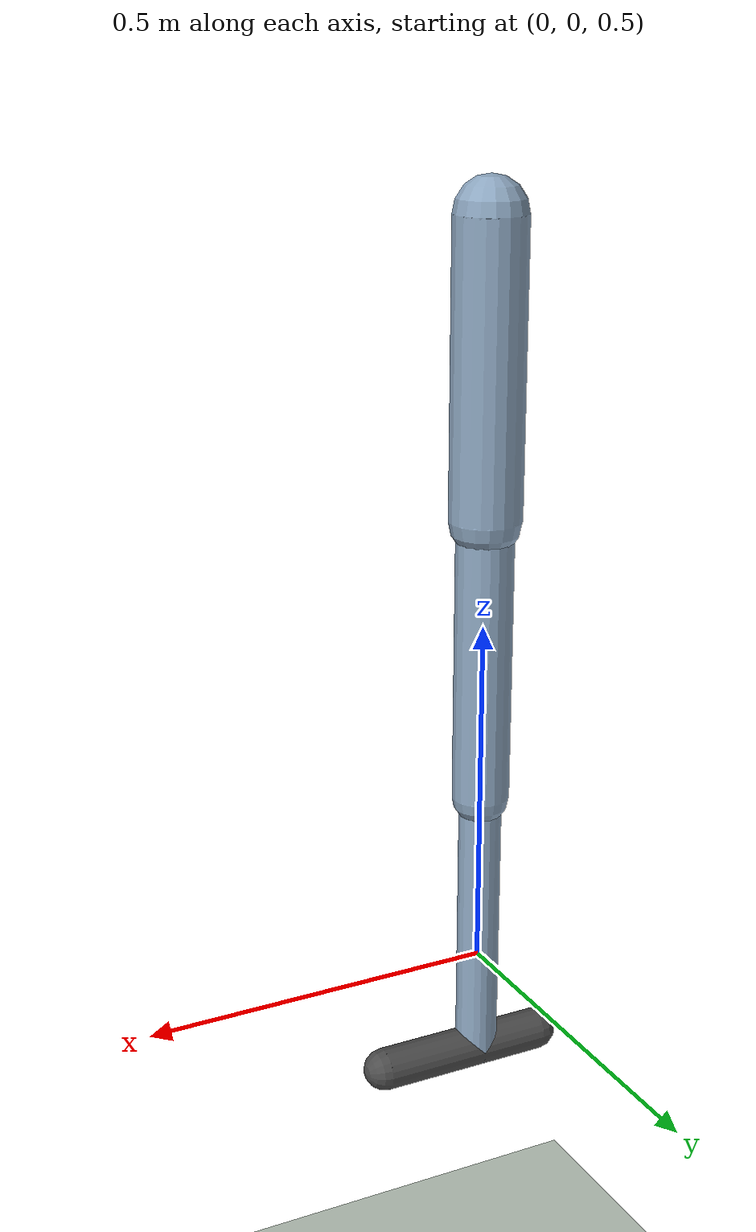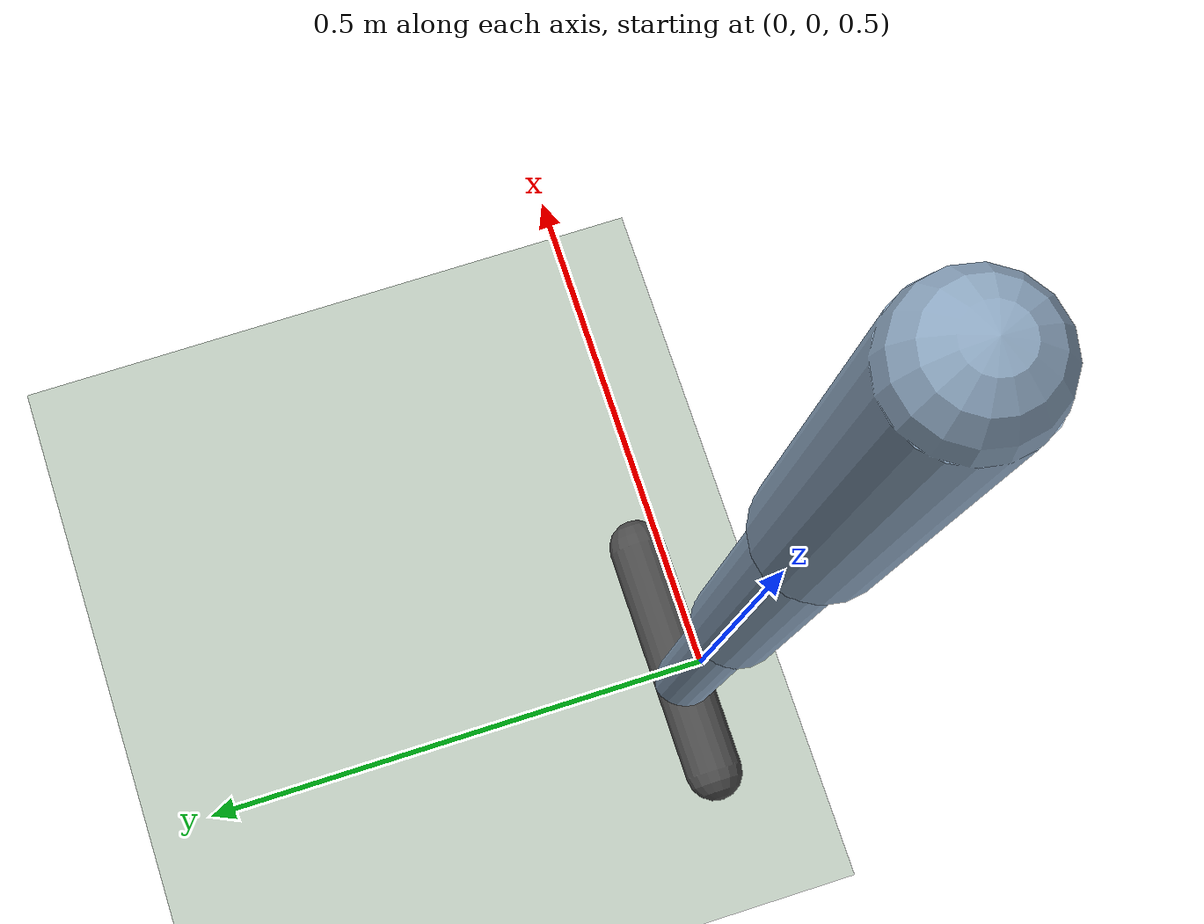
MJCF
<mujoco model="simple_biped">

  <!-- angle="degree" lets us write joint ranges in degrees.              -->
  <!-- MuJoCo stores and reports everything in radians at runtime.        -->
  <!-- autolimits means we don't need to write limited="true" everywhere. -->
  <compiler angle="degree" autolimits="true"/>

  <!-- timestep: how long each physics sub-step is (0.002 s = 500 Hz).   -->
  <!-- frame_skip in Python will call this 4 times per agent step → 8 ms  -->
  <option timestep="0.002" integrator="RK4"/>

  <!-- Shared defaults so we don't repeat them on every joint/geom. -->
  <default>
    <joint damping="0.1" armature="0.01"/>
    <!-- friction: [slide, spin, roll]. Higher slide = more grip. -->
    <geom friction="1.5 0.1 0.1" rgba="0.55 0.65 0.75 1" contype="1" conaffinity="1"/>
    <motor ctrlrange="-1 1" ctrllimited="true"/>
  </default>

  <worldbody>
    <light pos="0 0 4" dir="0 0 -1" diffuse="1 1 1" specular="0.1 0.1 0.1"/>
    <!-- The floor. The robot walks on this. -->
    <geom name="floor" type="plane" size="20 20 0.1" rgba="0.75 0.8 0.75 1"
          contype="1" conaffinity="1"/>

    <!--
      TORSO  (starts at z=1.25 so legs have room to fall to the ground)
      The robot drops ~0.35 m at episode start — MuJoCo handles this fine.
    -->
    <body name="torso" pos="0 0 1.25">

      <joint name="rootx" type="slide" axis="1 0 0"
             armature="0" damping="0" stiffness="0"/>
      <joint name="rootz" type="slide" axis="0 0 1"
             armature="0" damping="0" stiffness="0"/>
      <joint name="rooty" type="hinge" axis="0 1 0"
             armature="0" damping="0" stiffness="0"/>

      <!-- Torso capsule: 40 cm tall, 5 cm radius -->
      <geom name="torso_geom" type="capsule" fromto="0 0 -0.1 0 0 0.3" size="0.05"/>

      <!-- ── RIGHT LEG ──────────────────────────────────────────────── -->
      <!--
        Each leg body is positioned at the BOTTOM of the parent geom.
        pos="0 0 -0.1" means it attaches 10 cm below the torso centre.
      -->
      <body name="right_thigh" pos="0 0 -0.1">
        <!--
          Hip joint: swings the leg forward (positive) and backward (negative).
          Range -30 to 100 degrees allows a large forward swing for running.
        -->
        <joint name="right_hip" type="hinge" axis="0 1 0" range="-30 100" damping="0.5"/>
        <!-- Thigh: 40 cm long capsule pointing straight down -->
        <geom name="right_thigh_geom" type="capsule" fromto="0 0 0 0 0 -0.4" size="0.04"/>

        <body name="right_shin" pos="0 0 -0.4">
          <!--
            Knee joint: only bends one way (range -80 to 0).
            Knees can't hyperextend — this matches real anatomy.
          -->
          <joint name="right_knee" type="hinge" axis="0 1 0" range="-80 0" damping="0.3"/>
          <geom name="right_shin_geom" type="capsule" fromto="0 0 0 0 0 -0.4" size="0.03"/>

          <body name="right_foot" pos="0 0 -0.4">
            <!-- Ankle: plantarflexion and dorsiflexion -->
            <joint name="right_ankle" type="hinge" axis="0 1 0" range="-45 45" damping="0.2"/>
            <!--
              Foot: a HORIZONTAL capsule so there's a flat-ish surface for contact.
              fromto goes a bit forward (0.15) and a bit back (-0.1) of the ankle.
            -->
            <geom name="right_foot_geom" type="capsule" fromto="-0.1 0 0 0.15 0 0"
                  size="0.03" rgba="0.3 0.3 0.3 1"/>
          </body>
        </body>
      </body>

      <!-- ── LEFT LEG (mirror of right) ───────────────────────────── -->
      <body name="left_thigh" pos="0 0 -0.1">
        <joint name="left_hip" type="hinge" axis="0 1 0" range="-30 100" damping="0.5"/>
        <geom name="left_thigh_geom" type="capsule" fromto="0 0 0 0 0 -0.4" size="0.04"/>

        <body name="left_shin" pos="0 0 -0.4">
          <joint name="left_knee" type="hinge" axis="0 1 0" range="-80 0" damping="0.3"/>
          <geom name="left_shin_geom" type="capsule" fromto="0 0 0 0 0 -0.4" size="0.03"/>

          <body name="left_foot" pos="0 0 -0.4">
            <joint name="left_ankle" type="hinge" axis="0 1 0" range="-45 45" damping="0.2"/>
            <geom name="left_foot_geom" type="capsule" fromto="-0.1 0 0 0.15 0 0"
                  size="0.03" rgba="0.3 0.3 0.3 1"/>
          </body>
        </body>
      </body>

    </body>
  </worldbody>

  <actuator>
    <motor name="right_hip_motor"   joint="right_hip"   gear="100"/>
    <motor name="right_knee_motor"  joint="right_knee"  gear="80"/>
    <motor name="right_ankle_motor" joint="right_ankle" gear="60"/>
    <motor name="left_hip_motor"    joint="left_hip"    gear="100"/>
    <motor name="left_knee_motor"   joint="left_knee"   gear="80"/>
    <motor name="left_ankle_motor"  joint="left_ankle"  gear="60"/>
  </actuator>

</mujoco>
